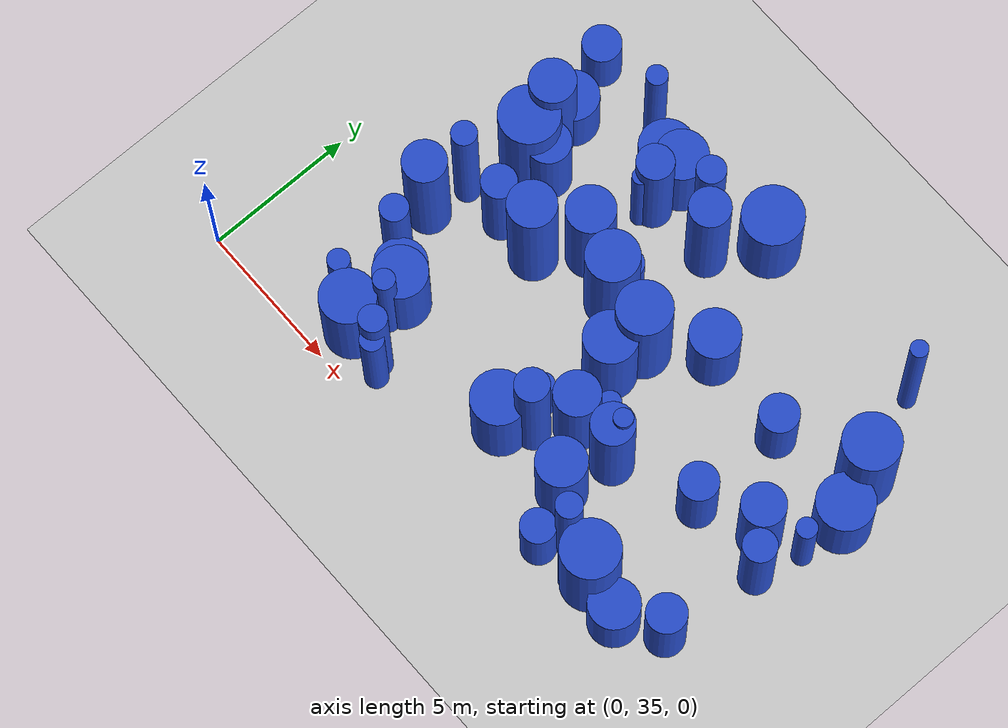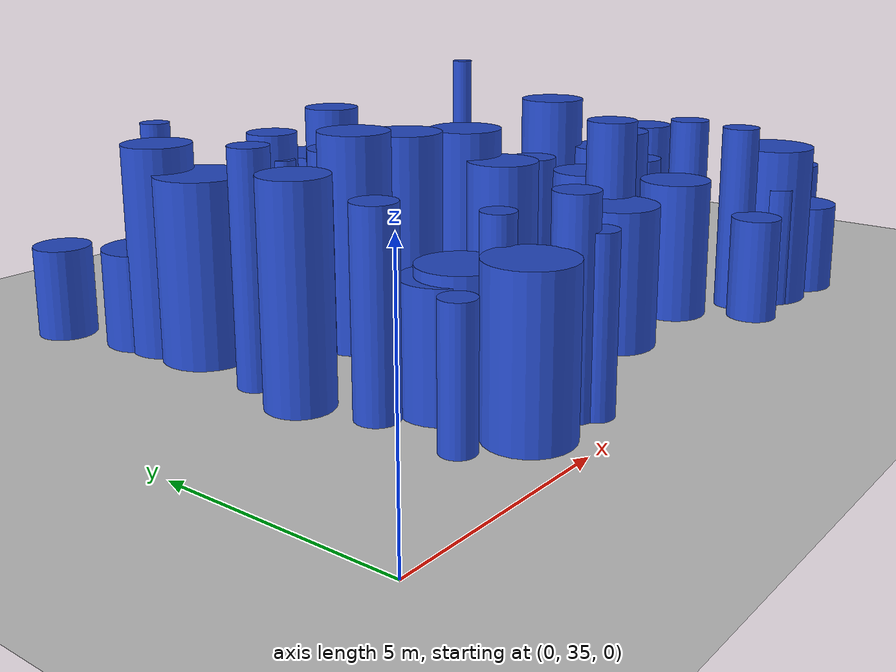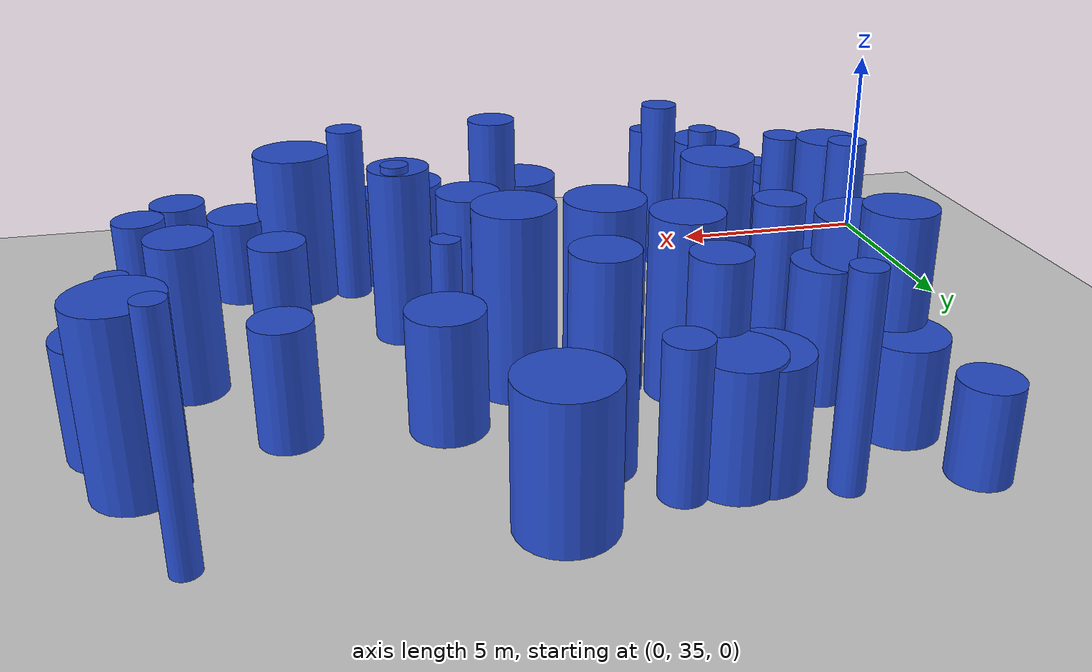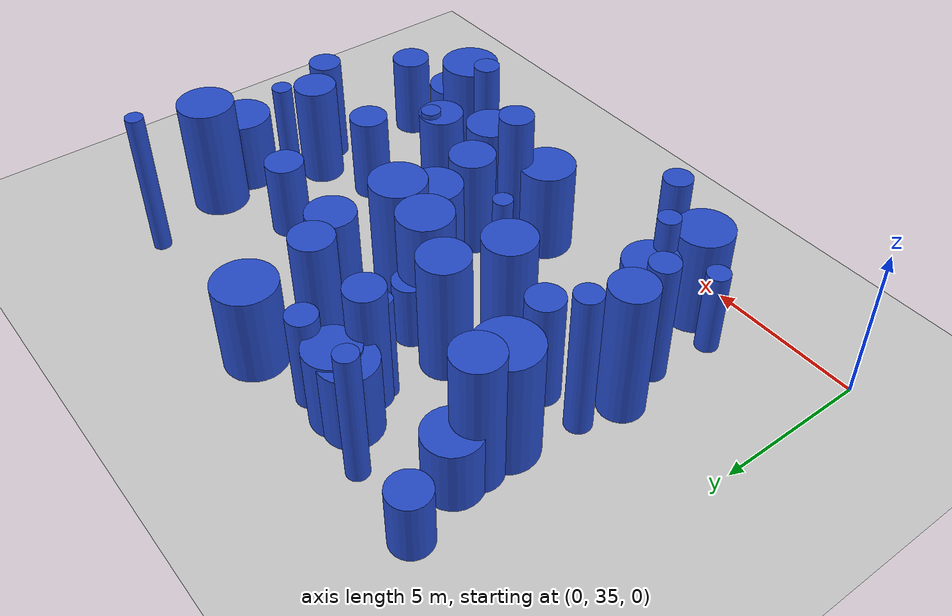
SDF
<sdf version="1.6">
 <world name="default">
  <model name="ground_plane">
   <static>1</static>
   <link name="link">
    <collision name="collision">
     <geometry><plane><normal>0 0 1</normal><size>100 100</size></plane></geometry>
     <surface><friction><ode><mu>100</mu><mu2>50</mu2></ode></friction></surface>
    </collision>
    <visual name="visual">
     <cast_shadows>0</cast_shadows>
     <geometry><plane><normal>0 0 1</normal><size>100 100</size></plane></geometry>
     <material>
      <script><uri>file://media/materials/scripts/gazebo.material</uri><name>Gazebo/Grey</name></script>
     </material>
    </visual>
   </link>
  </model>
  <model name="1">
   <static>0</static>
   <link name="link">
    <inertial>
     <mass>2</mass>
     <inertia>
      <ixx>0.889597</ixx>
      <ixy>0</ixy>
      <ixz>0</ixz>
      <iyy>0.889597</iyy>
      <iyz>0</iyz>
      <izz>0.404641</izz>
     </inertia>
    </inertial>
    <collision name="collision">
     <geometry><cylinder><length>2.03068</length><radius>0.636114</radius></cylinder></geometry>
     <surface><contact><collide_without_contact>1</collide_without_contact></contact></surface>
    </collision>
    <visual name="visual">
     <geometry><cylinder><length>2.03068</length><radius>0.636114</radius></cylinder></geometry>
     <material>
      <script><uri>file://media/materials/scripts/gazebo.material</uri><name>Gazebo/Blue</name></script>
     </material>
    </visual>
    <gravity>0</gravity>
   </link>
   <pose>3.46889 47.8136 1.01534 0 -0 0</pose>
  </model>
  <model name="3">
   <static>0</static>
   <link name="link">
    <inertial>
     <mass>2</mass>
     <inertia><ixx>3.44328</ixx><ixy>0</ixy><ixz>0</ixz><iyy>3.44328</iyy><iyz>0</iyz><izz>0.742387</izz></inertia>
    </inertial>
    <collision name="collision">
     <geometry><cylinder><length>4.29331</length><radius>0.861619</radius></cylinder></geometry>
     <surface><contact><collide_without_contact>1</collide_without_contact></contact></surface>
    </collision>
    <visual name="visual">
     <geometry><cylinder><length>4.29331</length><radius>0.861619</radius></cylinder></geometry>
     <material>
      <script><uri>file://media/materials/scripts/gazebo.material</uri><name>Gazebo/Blue</name></script>
     </material>
    </visual>
    <gravity>0</gravity>
   </link>
   <pose>9.53934 42.8927 2.14666 0 -0 0</pose>
  </model>
  <model name="4">
   <static>0</static>
   <link name="link">
    <inertial>
     <mass>2</mass>
     <inertia><ixx>1.52078</ixx><ixy>0</ixy><ixz>0</ixz><iyy>1.52078</iyy><iyz>0</iyz><izz>0.706881</izz></inertia>
    </inertial>
    <collision name="collision">
     <geometry><cylinder><length>2.64651</length><radius>0.840762</radius></cylinder></geometry>
     <surface><contact><collide_without_contact>1</collide_without_contact></contact></surface>
    </collision>
    <visual name="visual">
     <geometry><cylinder><length>2.64651</length><radius>0.840762</radius></cylinder></geometry>
     <material>
      <script><uri>file://media/materials/scripts/gazebo.material</uri><name>Gazebo/Blue</name></script>
     </material>
    </visual>
    <gravity>0</gravity>
   </link>
   <pose>5.06571 38.2801 1.32326 0 -0 0</pose>
  </model>
  <model name="21">
   <static>0</static>
   <link name="link">
    <inertial>
     <mass>2</mass>
     <inertia><ixx>3.67494</ixx><ixy>0</ixy><ixz>0</ixz><iyy>3.67494</iyy><iyz>0</iyz><izz>0.558673</izz></inertia>
    </inertial>
    <collision name="collision">
     <geometry><cylinder><length>4.51371</length><radius>0.747444</radius></cylinder></geometry>
     <surface><contact><collide_without_contact>1</collide_without_contact></contact></surface>
    </collision>
    <visual name="visual">
     <geometry><cylinder><length>4.51371</length><radius>0.747444</radius></cylinder></geometry>
     <material>
      <script><uri>file://media/materials/scripts/gazebo.material</uri><name>Gazebo/Blue</name></script>
     </material>
    </visual>
    <gravity>0</gravity>
   </link>
   <pose>4.16992 45.1792 2.25686 0 -0 0</pose>
  </model>
  <model name="39">
   <static>0</static>
   <link name="link">
    <inertial>
     <mass>2</mass>
     <inertia><ixx>1.53544</ixx><ixy>0</ixy><ixz>0</ixz><iyy>1.53544</iyy><iyz>0</iyz><izz>0.411838</izz></inertia>
    </inertial>
    <collision name="collision">
     <geometry><cylinder><length>2.82438</length><radius>0.641746</radius></cylinder></geometry>
     <surface><contact><collide_without_contact>1</collide_without_contact></contact></surface>
    </collision>
    <visual name="visual">
     <geometry><cylinder><length>2.82438</length><radius>0.641746</radius></cylinder></geometry>
     <material>
      <script><uri>file://media/materials/scripts/gazebo.material</uri><name>Gazebo/Blue</name></script>
     </material>
    </visual>
    <gravity>0</gravity>
   </link>
   <pose>18.6007 37.0653 1.41219 0 -0 0</pose>
  </model>
  <model name="60">
   <static>0</static>
   <link name="link">
    <inertial>
     <mass>2</mass>
     <inertia><ixx>2.27596</ixx><ixy>0</ixy><ixz>0</ixz><iyy>2.27596</iyy><iyz>0</iyz><izz>0.815841</izz></inertia>
    </inertial>
    <collision name="collision">
     <geometry><cylinder><length>3.34787</length><radius>0.903239</radius></cylinder></geometry>
     <surface><contact><collide_without_contact>1</collide_without_contact></contact></surface>
    </collision>
    <visual name="visual">
     <geometry><cylinder><length>3.34787</length><radius>0.903239</radius></cylinder></geometry>
     <material>
      <script><uri>file://media/materials/scripts/gazebo.material</uri><name>Gazebo/Blue</name></script>
     </material>
    </visual>
    <gravity>0</gravity>
   </link>
   <pose>5.01444 36.257 1.67394 0 -0 0</pose>
  </model>
  <model name="65">
   <static>0</static>
   <link name="link">
    <inertial>
     <mass>2</mass>
     <inertia><ixx>1.18561</ixx><ixy>0</ixy><ixz>0</ixz><iyy>1.18561</iyy><iyz>0</iyz><izz>0.125849</izz></inertia>
    </inertial>
    <collision name="collision">
     <geometry><cylinder><length>2.59541</length><radius>0.354752</radius></cylinder></geometry>
     <surface><contact><collide_without_contact>1</collide_without_contact></contact></surface>
    </collision>
    <visual name="visual">
     <geometry><cylinder><length>2.59541</length><radius>0.354752</radius></cylinder></geometry>
     <material>
      <script><uri>file://media/materials/scripts/gazebo.material</uri><name>Gazebo/Blue</name></script>
     </material>
    </visual>
    <gravity>0</gravity>
   </link>
   <pose>12.5356 40.1762 1.2977 0 -0 0</pose>
  </model>
  <model name="75">
   <static>0</static>
   <link name="link">
    <inertial>
     <mass>2</mass>
     <inertia><ixx>4.06872</ixx><ixy>0</ixy><ixz>0</ixz><iyy>4.06872</iyy><iyz>0</iyz><izz>0.624132</izz></inertia>
    </inertial>
    <collision name="collision">
     <geometry><cylinder><length>4.74762</length><radius>0.790021</radius></cylinder></geometry>
     <surface><contact><collide_without_contact>1</collide_without_contact></contact></surface>
    </collision>
    <visual name="visual">
     <geometry><cylinder><length>4.74762</length><radius>0.790021</radius></cylinder></geometry>
     <material>
      <script><uri>file://media/materials/scripts/gazebo.material</uri><name>Gazebo/Blue</name></script>
     </material>
    </visual>
    <gravity>0</gravity>
   </link>
   <pose>6.83529 42.0397 2.37381 0 -0 0</pose>
  </model>
  <model name="89">
   <static>0</static>
   <link name="link">
    <inertial>
     <mass>2</mass>
     <inertia><ixx>1.13794</ixx><ixy>0</ixy><ixz>0</ixz><iyy>1.13794</iyy><iyz>0</iyz><izz>0.753401</izz></inertia>
    </inertial>
    <collision name="collision">
     <geometry><cylinder><length>2.13716</length><radius>0.867987</radius></cylinder></geometry>
     <surface><contact><collide_without_contact>1</collide_without_contact></contact></surface>
    </collision>
    <visual name="visual">
     <geometry><cylinder><length>2.13716</length><radius>0.867987</radius></cylinder></geometry>
     <material>
      <script><uri>file://media/materials/scripts/gazebo.material</uri><name>Gazebo/Blue</name></script>
     </material>
    </visual>
    <gravity>0</gravity>
   </link>
   <pose>4.20419 45.9485 1.06858 0 -0 0</pose>
  </model>
  <model name="91">
   <static>0</static>
   <link name="link">
    <inertial>
     <mass>2</mass>
     <inertia><ixx>1.98681</ixx><ixy>0</ixy><ixz>0</ixz><iyy>1.98681</iyy><iyz>0</iyz><izz>0.983829</izz></inertia>
    </inertial>
    <collision name="collision">
     <geometry><cylinder><length>2.99489</length><radius>0.991881</radius></cylinder></geometry>
     <surface><contact><collide_without_contact>1</collide_without_contact></contact></surface>
    </collision>
    <visual name="visual">
     <geometry><cylinder><length>2.99489</length><radius>0.991881</radius></cylinder></geometry>
     <material>
      <script><uri>file://media/materials/scripts/gazebo.material</uri><name>Gazebo/Blue</name></script>
     </material>
    </visual>
    <gravity>0</gravity>
   </link>
   <pose>11.4309 47.7421 1.49744 0 -0 0</pose>
  </model>
  <model name="107">
   <static>0</static>
   <link name="link">
    <inertial>
     <mass>2</mass>
     <inertia><ixx>2.44999</ixx><ixy>0</ixy><ixz>0</ixz><iyy>2.44999</iyy><iyz>0</iyz><izz>0.747513</izz></inertia>
    </inertial>
    <collision name="collision">
     <geometry><cylinder><length>3.5295</length><radius>0.864588</radius></cylinder></geometry>
     <surface><contact><collide_without_contact>1</collide_without_contact></contact></surface>
    </collision>
    <visual name="visual">
     <geometry><cylinder><length>3.5295</length><radius>0.864588</radius></cylinder></geometry>
     <material>
      <script><uri>file://media/materials/scripts/gazebo.material</uri><name>Gazebo/Blue</name></script>
     </material>
    </visual>
    <gravity>0</gravity>
   </link>
   <pose>11.2421 41.3264 1.76475 0 -0 0</pose>
  </model>
  <model name="108">
   <static>0</static>
   <link name="link">
    <inertial>
     <mass>2</mass>
     <inertia>
      <ixx>0.946671</ixx>
      <ixy>0</ixy>
      <ixz>0</ixz>
      <iyy>0.946671</iyy>
      <iyz>0</iyz>
      <izz>0.17945</izz>
     </inertia>
    </inertial>
    <collision name="collision">
     <geometry><cylinder><length>2.26753</length><radius>0.423616</radius></cylinder></geometry>
     <surface><contact><collide_without_contact>1</collide_without_contact></contact></surface>
    </collision>
    <visual name="visual">
     <geometry><cylinder><length>2.26753</length><radius>0.423616</radius></cylinder></geometry>
     <material>
      <script><uri>file://media/materials/scripts/gazebo.material</uri><name>Gazebo/Blue</name></script>
     </material>
    </visual>
    <gravity>0</gravity>
   </link>
   <pose>13.3868 39.3535 1.13376 0 -0 0</pose>
  </model>
  <model name="121">
   <static>0</static>
   <link name="link">
    <inertial>
     <mass>2</mass>
     <inertia>
      <ixx>0.938584</ixx>
      <ixy>0</ixy>
      <ixz>0</ixz>
      <iyy>0.938584</iyy>
      <iyz>0</iyz>
      <izz>0.296077</izz>
     </inertia>
    </inertial>
    <collision name="collision">
     <geometry><cylinder><length>2.17791</length><radius>0.544129</radius></cylinder></geometry>
     <surface><contact><collide_without_contact>1</collide_without_contact></contact></surface>
    </collision>
    <visual name="visual">
     <geometry><cylinder><length>2.17791</length><radius>0.544129</radius></cylinder></geometry>
     <material>
      <script><uri>file://media/materials/scripts/gazebo.material</uri><name>Gazebo/Blue</name></script>
     </material>
    </visual>
    <gravity>0</gravity>
   </link>
   <pose>9.45897 43.5755 1.08895 0 -0 0</pose>
  </model>
  <model name="122">
   <static>0</static>
   <link name="link">
    <inertial>
     <mass>2</mass>
     <inertia><ixx>2.03989</ixx><ixy>0</ixy><ixz>0</ixz><iyy>2.03989</iyy><iyz>0</iyz><izz>0.80967</izz></inertia>
    </inertial>
    <collision name="collision">
     <geometry><cylinder><length>3.13214</length><radius>0.899817</radius></cylinder></geometry>
     <surface><contact><collide_without_contact>1</collide_without_contact></contact></surface>
    </collision>
    <visual name="visual">
     <geometry><cylinder><length>3.13214</length><radius>0.899817</radius></cylinder></geometry>
     <material>
      <script><uri>file://media/materials/scripts/gazebo.material</uri><name>Gazebo/Blue</name></script>
     </material>
    </visual>
    <gravity>0</gravity>
   </link>
   <pose>10.3738 37.6424 1.56607 0 -0 0</pose>
  </model>
  <model name="141">
   <static>0</static>
   <link name="link">
    <inertial>
     <mass>2</mass>
     <inertia><ixx>2.22837</ixx><ixy>0</ixy><ixz>0</ixz><iyy>2.22837</iyy><iyz>0</iyz><izz>0.55836</izz></inertia>
    </inertial>
    <collision name="collision">
     <geometry><cylinder><length>3.41982</length><radius>0.747235</radius></cylinder></geometry>
     <surface><contact><collide_without_contact>1</collide_without_contact></contact></surface>
    </collision>
    <visual name="visual">
     <geometry><cylinder><length>3.41982</length><radius>0.747235</radius></cylinder></geometry>
     <material>
      <script><uri>file://media/materials/scripts/gazebo.material</uri><name>Gazebo/Blue</name></script>
     </material>
    </visual>
    <gravity>0</gravity>
   </link>
   <pose>11.8938 39.4243 1.70991 0 -0 0</pose>
  </model>
  <model name="144">
   <static>0</static>
   <link name="link">
    <inertial>
     <mass>2</mass>
     <inertia><ixx>3.2992</ixx><ixy>0</ixy><ixz>0</ixz><iyy>3.2992</iyy><iyz>0</iyz><izz>0.796339</izz></inertia>
    </inertial>
    <collision name="collision">
     <geometry><cylinder><length>4.17207</length><radius>0.892378</radius></cylinder></geometry>
     <surface><contact><collide_without_contact>1</collide_without_contact></contact></surface>
    </collision>
    <visual name="visual">
     <geometry><cylinder><length>4.17207</length><radius>0.892378</radius></cylinder></geometry>
     <material>
      <script><uri>file://media/materials/scripts/gazebo.material</uri><name>Gazebo/Blue</name></script>
     </material>
    </visual>
    <gravity>0</gravity>
   </link>
   <pose>11.3766 42.5503 2.08603 0 -0 0</pose>
  </model>
  <model name="149">
   <static>0</static>
   <link name="link">
    <inertial>
     <mass>2</mass>
     <inertia>
      <ixx>2.16285</ixx>
      <ixy>0</ixy>
      <ixz>0</ixz>
      <iyy>2.16285</iyy>
      <iyz>0</iyz>
      <izz>0.0800078</izz>
     </inertia>
    </inertial>
    <collision name="collision">
     <geometry><cylinder><length>3.5689</length><radius>0.282857</radius></cylinder></geometry>
     <surface><contact><collide_without_contact>1</collide_without_contact></contact></surface>
    </collision>
    <visual name="visual">
     <geometry><cylinder><length>3.5689</length><radius>0.282857</radius></cylinder></geometry>
     <material>
      <script><uri>file://media/materials/scripts/gazebo.material</uri><name>Gazebo/Blue</name></script>
     </material>
    </visual>
    <gravity>0</gravity>
   </link>
   <pose>7.99764 45.3995 1.78445 0 -0 0</pose>
  </model>
  <model name="151">
   <static>0</static>
   <link name="link">
    <inertial>
     <mass>2</mass>
     <inertia><ixx>1.79952</ixx><ixy>0</ixy><ixz>0</ixz><iyy>1.79952</iyy><iyz>0</iyz><izz>0.532405</izz></inertia>
    </inertial>
    <collision name="collision">
     <geometry><cylinder><length>3.03314</length><radius>0.729661</radius></cylinder></geometry>
     <surface><contact><collide_without_contact>1</collide_without_contact></contact></surface>
    </collision>
    <visual name="visual">
     <geometry><cylinder><length>3.03314</length><radius>0.729661</radius></cylinder></geometry>
     <material>
      <script><uri>file://media/materials/scripts/gazebo.material</uri><name>Gazebo/Blue</name></script>
     </material>
    </visual>
    <gravity>0</gravity>
   </link>
   <pose>5.14651 44.1604 1.51657 0 -0 0</pose>
  </model>
  <model name="160">
   <static>0</static>
   <link name="link">
    <inertial>
     <mass>2</mass>
     <inertia><ixx>1.587</ixx><ixy>0</ixy><ixz>0</ixz><iyy>1.587</iyy><iyz>0</iyz><izz>0.717672</izz></inertia>
    </inertial>
    <collision name="collision">
     <geometry><cylinder><length>2.71459</length><radius>0.847155</radius></cylinder></geometry>
     <surface><contact><collide_without_contact>1</collide_without_contact></contact></surface>
    </collision>
    <visual name="visual">
     <geometry><cylinder><length>2.71459</length><radius>0.847155</radius></cylinder></geometry>
     <material>
      <script><uri>file://media/materials/scripts/gazebo.material</uri><name>Gazebo/Blue</name></script>
     </material>
    </visual>
    <gravity>0</gravity>
   </link>
   <pose>8.05956 47.0475 1.35729 0 -0 0</pose>
  </model>
  <model name="172">
   <static>0</static>
   <link name="link">
    <inertial>
     <mass>2</mass>
     <inertia><ixx>2.4119</ixx><ixy>0</ixy><ixz>0</ixz><iyy>2.4119</iyy><iyz>0</iyz><izz>0.334756</izz></inertia>
    </inertial>
    <collision name="collision">
     <geometry><cylinder><length>3.66976</length><radius>0.578581</radius></cylinder></geometry>
     <surface><contact><collide_without_contact>1</collide_without_contact></contact></surface>
    </collision>
    <visual name="visual">
     <geometry><cylinder><length>3.66976</length><radius>0.578581</radius></cylinder></geometry>
     <material>
      <script><uri>file://media/materials/scripts/gazebo.material</uri><name>Gazebo/Blue</name></script>
     </material>
    </visual>
    <gravity>0</gravity>
   </link>
   <pose>5.31905 42.0284 1.83488 0 -0 0</pose>
  </model>
  <model name="183">
   <static>0</static>
   <link name="link">
    <inertial>
     <mass>2</mass>
     <inertia><ixx>1.0876</ixx><ixy>0</ixy><ixz>0</ixz><iyy>1.0876</iyy><iyz>0</iyz><izz>0.670866</izz></inertia>
    </inertial>
    <collision name="collision">
     <geometry><cylinder><length>2.12439</length><radius>0.819064</radius></cylinder></geometry>
     <surface><contact><collide_without_contact>1</collide_without_contact></contact></surface>
    </collision>
    <visual name="visual">
     <geometry><cylinder><length>2.12439</length><radius>0.819064</radius></cylinder></geometry>
     <material>
      <script><uri>file://media/materials/scripts/gazebo.material</uri><name>Gazebo/Blue</name></script>
     </material>
    </visual>
    <gravity>0</gravity>
   </link>
   <pose>17.2233 36.2243 1.06219 0 -0 0</pose>
  </model>
  <model name="189">
   <static>0</static>
   <link name="link">
    <inertial>
     <mass>2</mass>
     <inertia><ixx>2.23636</ixx><ixy>0</ixy><ixz>0</ixz><iyy>2.23636</iyy><iyz>0</iyz><izz>0.148612</izz></inertia>
    </inertial>
    <collision name="collision">
     <geometry><cylinder><length>3.60171</length><radius>0.385503</radius></cylinder></geometry>
     <surface><contact><collide_without_contact>1</collide_without_contact></contact></surface>
    </collision>
    <visual name="visual">
     <geometry><cylinder><length>3.60171</length><radius>0.385503</radius></cylinder></geometry>
     <material>
      <script><uri>file://media/materials/scripts/gazebo.material</uri><name>Gazebo/Blue</name></script>
     </material>
    </visual>
    <gravity>0</gravity>
   </link>
   <pose>6.62027 35.8617 1.80086 0 -0 0</pose>
  </model>
  <model name="194">
   <static>0</static>
   <link name="link">
    <inertial>
     <mass>2</mass>
     <inertia><ixx>1.39867</ixx><ixy>0</ixy><ixz>0</ixz><iyy>1.39867</iyy><iyz>0</iyz><izz>0.134449</izz></inertia>
    </inertial>
    <collision name="collision">
     <geometry><cylinder><length>2.82643</length><radius>0.366673</radius></cylinder></geometry>
     <surface><contact><collide_without_contact>1</collide_without_contact></contact></surface>
    </collision>
    <visual name="visual">
     <geometry><cylinder><length>2.82643</length><radius>0.366673</radius></cylinder></geometry>
     <material>
      <script><uri>file://media/materials/scripts/gazebo.material</uri><name>Gazebo/Blue</name></script>
     </material>
    </visual>
    <gravity>0</gravity>
   </link>
   <pose>3.78266 36.9027 1.41321 0 -0 0</pose>
  </model>
  <model name="197">
   <static>0</static>
   <link name="link">
    <inertial>
     <mass>2</mass>
     <inertia><ixx>2.98537</ixx><ixy>0</ixy><ixz>0</ixz><iyy>2.98537</iyy><iyz>0</iyz><izz>0.214834</izz></inertia>
    </inertial>
    <collision name="collision">
     <geometry><cylinder><length>4.15544</length><radius>0.463502</radius></cylinder></geometry>
     <surface><contact><collide_without_contact>1</collide_without_contact></contact></surface>
    </collision>
    <visual name="visual">
     <geometry><cylinder><length>4.15544</length><radius>0.463502</radius></cylinder></geometry>
     <material>
      <script><uri>file://media/materials/scripts/gazebo.material</uri><name>Gazebo/Blue</name></script>
     </material>
    </visual>
    <gravity>0</gravity>
   </link>
   <pose>4.02497 38.9768 2.07772 0 -0 0</pose>
  </model>
  <model name="205">
   <static>0</static>
   <link name="link">
    <inertial>
     <mass>2</mass>
     <inertia><ixx>3.60074</ixx><ixy>0</ixy><ixz>0</ixz><iyy>3.60074</iyy><iyz>0</iyz><izz>0.447805</izz></inertia>
    </inertial>
    <collision name="collision">
     <geometry><cylinder><length>4.50123</length><radius>0.669183</radius></cylinder></geometry>
     <surface><contact><collide_without_contact>1</collide_without_contact></contact></surface>
    </collision>
    <visual name="visual">
     <geometry><cylinder><length>4.50123</length><radius>0.669183</radius></cylinder></geometry>
     <material>
      <script><uri>file://media/materials/scripts/gazebo.material</uri><name>Gazebo/Blue</name></script>
     </material>
    </visual>
    <gravity>0</gravity>
   </link>
   <pose>10.3577 46.0634 2.25061 0 -0 0</pose>
  </model>
  <model name="211">
   <static>0</static>
   <link name="link">
    <inertial>
     <mass>2</mass>
     <inertia><ixx>3.65419</ixx><ixy>0</ixy><ixz>0</ixz><iyy>3.65419</iyy><iyz>0</iyz><izz>0.50434</izz></inertia>
    </inertial>
    <collision name="collision">
     <geometry><cylinder><length>4.51798</length><radius>0.710169</radius></cylinder></geometry>
     <surface><contact><collide_without_contact>1</collide_without_contact></contact></surface>
    </collision>
    <visual name="visual">
     <geometry><cylinder><length>4.51798</length><radius>0.710169</radius></cylinder></geometry>
     <material>
      <script><uri>file://media/materials/scripts/gazebo.material</uri><name>Gazebo/Blue</name></script>
     </material>
    </visual>
    <gravity>0</gravity>
   </link>
   <pose>3.59734 40.5532 2.25899 0 -0 0</pose>
  </model>
  <model name="218">
   <static>0</static>
   <link name="link">
    <inertial>
     <mass>2</mass>
     <inertia><ixx>2.04719</ixx><ixy>0</ixy><ixz>0</ixz><iyy>2.04719</iyy><iyz>0</iyz><izz>0.663732</izz></inertia>
    </inertial>
    <collision name="collision">
     <geometry><cylinder><length>3.20811</length><radius>0.814697</radius></cylinder></geometry>
     <surface><contact><collide_without_contact>1</collide_without_contact></contact></surface>
    </collision>
    <visual name="visual">
     <geometry><cylinder><length>3.20811</length><radius>0.814697</radius></cylinder></geometry>
     <material>
      <script><uri>file://media/materials/scripts/gazebo.material</uri><name>Gazebo/Blue</name></script>
     </material>
    </visual>
    <gravity>0</gravity>
   </link>
   <pose>13.1333 37.7189 1.60405 0 -0 0</pose>
  </model>
  <model name="227">
   <static>0</static>
   <link name="link">
    <inertial>
     <mass>2</mass>
     <inertia><ixx>1.48646</ixx><ixy>0</ixy><ixz>0</ixz><iyy>1.48646</iyy><iyz>0</iyz><izz>0.860408</izz></inertia>
    </inertial>
    <collision name="collision">
     <geometry><cylinder><length>2.51744</length><radius>0.927582</radius></cylinder></geometry>
     <surface><contact><collide_without_contact>1</collide_without_contact></contact></surface>
    </collision>
    <visual name="visual">
     <geometry><cylinder><length>2.51744</length><radius>0.927582</radius></cylinder></geometry>
     <material>
      <script><uri>file://media/materials/scripts/gazebo.material</uri><name>Gazebo/Blue</name></script>
     </material>
    </visual>
    <gravity>0</gravity>
   </link>
   <pose>19.4925 43.426 1.25872 0 -0 0</pose>
  </model>
  <model name="228">
   <static>0</static>
   <link name="link">
    <inertial>
     <mass>2</mass>
     <inertia><ixx>1.11134</ixx><ixy>0</ixy><ixz>0</ixz><iyy>1.11134</iyy><iyz>0</iyz><izz>0.324381</izz></inertia>
    </inertial>
    <collision name="collision">
     <geometry><cylinder><length>2.3864</length><radius>0.569545</radius></cylinder></geometry>
     <surface><contact><collide_without_contact>1</collide_without_contact></contact></surface>
    </collision>
    <visual name="visual">
     <geometry><cylinder><length>2.3864</length><radius>0.569545</radius></cylinder></geometry>
     <material>
      <script><uri>file://media/materials/scripts/gazebo.material</uri><name>Gazebo/Blue</name></script>
     </material>
    </visual>
    <gravity>0</gravity>
   </link>
   <pose>13.9903 36.0469 1.1932 0 -0 0</pose>
  </model>
  <model name="246">
   <static>0</static>
   <link name="link">
    <inertial>
     <mass>2</mass>
     <inertia><ixx>3.11288</ixx><ixy>0</ixy><ixz>0</ixz><iyy>3.11288</iyy><iyz>0</iyz><izz>0.972323</izz></inertia>
    </inertial>
    <collision name="collision">
     <geometry><cylinder><length>3.96993</length><radius>0.986064</radius></cylinder></geometry>
     <surface><contact><collide_without_contact>1</collide_without_contact></contact></surface>
    </collision>
    <visual name="visual">
     <geometry><cylinder><length>3.96993</length><radius>0.986064</radius></cylinder></geometry>
     <material>
      <script><uri>file://media/materials/scripts/gazebo.material</uri><name>Gazebo/Blue</name></script>
     </material>
    </visual>
    <gravity>0</gravity>
   </link>
   <pose>4.37035 44.0672 1.98496 0 -0 0</pose>
  </model>
  <model name="254">
   <static>0</static>
   <link name="link">
    <inertial>
     <mass>2</mass>
     <inertia>
      <ixx>4.14461</ixx>
      <ixy>0</ixy>
      <ixz>0</ixz>
      <iyy>4.14461</iyy>
      <iyz>0</iyz>
      <izz>0.0826098</izz>
     </inertia>
    </inertial>
    <collision name="collision">
     <geometry><cylinder><length>4.96184</length><radius>0.287419</radius></cylinder></geometry>
     <surface><contact><collide_without_contact>1</collide_without_contact></contact></surface>
    </collision>
    <visual name="visual">
     <geometry><cylinder><length>4.96184</length><radius>0.287419</radius></cylinder></geometry>
     <material>
      <script><uri>file://media/materials/scripts/gazebo.material</uri><name>Gazebo/Blue</name></script>
     </material>
    </visual>
    <gravity>0</gravity>
   </link>
   <pose>17.8684 47.6294 2.48092 0 -0 0</pose>
  </model>
  <model name="268">
   <static>0</static>
   <link name="link">
    <inertial>
     <mass>2</mass>
     <inertia><ixx>1.54803</ixx><ixy>0</ixy><ixz>0</ixz><iyy>1.54803</iyy><iyz>0</iyz><izz>0.797391</izz></inertia>
    </inertial>
    <collision name="collision">
     <geometry><cylinder><length>2.62602</length><radius>0.892967</radius></cylinder></geometry>
     <surface><contact><collide_without_contact>1</collide_without_contact></contact></surface>
    </collision>
    <visual name="visual">
     <geometry><cylinder><length>2.62602</length><radius>0.892967</radius></cylinder></geometry>
     <material>
      <script><uri>file://media/materials/scripts/gazebo.material</uri><name>Gazebo/Blue</name></script>
     </material>
    </visual>
    <gravity>0</gravity>
   </link>
   <pose>7.50631 46.9144 1.31301 0 -0 0</pose>
  </model>
  <model name="273">
   <static>0</static>
   <link name="link">
    <inertial>
     <mass>2</mass>
     <inertia><ixx>2.35766</ixx><ixy>0</ixy><ixz>0</ixz><iyy>2.35766</iyy><iyz>0</iyz><izz>0.291752</izz></inertia>
    </inertial>
    <collision name="collision">
     <geometry><cylinder><length>3.6429</length><radius>0.540141</radius></cylinder></geometry>
     <surface><contact><collide_without_contact>1</collide_without_contact></contact></surface>
    </collision>
    <visual name="visual">
     <geometry><cylinder><length>3.6429</length><radius>0.540141</radius></cylinder></geometry>
     <material>
      <script><uri>file://media/materials/scripts/gazebo.material</uri><name>Gazebo/Blue</name></script>
     </material>
    </visual>
    <gravity>0</gravity>
   </link>
   <pose>19.0183 40.3438 1.82145 0 -0 0</pose>
  </model>
  <model name="274">
   <static>0</static>
   <link name="link">
    <inertial>
     <mass>2</mass>
     <inertia><ixx>1.82164</ixx><ixy>0</ixy><ixz>0</ixz><iyy>1.82164</iyy><iyz>0</iyz><izz>0.228422</izz></inertia>
    </inertial>
    <collision name="collision">
     <geometry><cylinder><length>3.20072</length><radius>0.477935</radius></cylinder></geometry>
     <surface><contact><collide_without_contact>1</collide_without_contact></contact></surface>
    </collision>
    <visual name="visual">
     <geometry><cylinder><length>3.20072</length><radius>0.477935</radius></cylinder></geometry>
     <material>
      <script><uri>file://media/materials/scripts/gazebo.material</uri><name>Gazebo/Blue</name></script>
     </material>
    </visual>
    <gravity>0</gravity>
   </link>
   <pose>9.14168 47.2596 1.60036 0 -0 0</pose>
  </model>
  <model name="278">
   <static>0</static>
   <link name="link">
    <inertial>
     <mass>2</mass>
     <inertia><ixx>1.50173</ixx><ixy>0</ixy><ixz>0</ixz><iyy>1.50173</iyy><iyz>0</iyz><izz>0.670975</izz></inertia>
    </inertial>
    <collision name="collision">
     <geometry><cylinder><length>2.64527</length><radius>0.819131</radius></cylinder></geometry>
     <surface><contact><collide_without_contact>1</collide_without_contact></contact></surface>
    </collision>
    <visual name="visual">
     <geometry><cylinder><length>2.64527</length><radius>0.819131</radius></cylinder></geometry>
     <material>
      <script><uri>file://media/materials/scripts/gazebo.material</uri><name>Gazebo/Blue</name></script>
     </material>
    </visual>
    <gravity>0</gravity>
   </link>
   <pose>13.0116 43.9822 1.32264 0 -0 0</pose>
  </model>
  <model name="289">
   <static>0</static>
   <link name="link">
    <inertial>
     <mass>2</mass>
     <inertia><ixx>2.80125</ixx><ixy>0</ixy><ixz>0</ixz><iyy>2.80125</iyy><iyz>0</iyz><izz>0.900501</izz></inertia>
    </inertial>
    <collision name="collision">
     <geometry><cylinder><length>3.7558</length><radius>0.948948</radius></cylinder></geometry>
     <surface><contact><collide_without_contact>1</collide_without_contact></contact></surface>
    </collision>
    <visual name="visual">
     <geometry><cylinder><length>3.7558</length><radius>0.948948</radius></cylinder></geometry>
     <material>
      <script><uri>file://media/materials/scripts/gazebo.material</uri><name>Gazebo/Blue</name></script>
     </material>
    </visual>
    <gravity>0</gravity>
   </link>
   <pose>15.8348 36.4968 1.8779 0 -0 0</pose>
  </model>
  <model name="295">
   <static>0</static>
   <link name="link">
    <inertial>
     <mass>2</mass>
     <inertia><ixx>1.46747</ixx><ixy>0</ixy><ixz>0</ixz><iyy>1.46747</iyy><iyz>0</iyz><izz>0.0903</izz></inertia>
    </inertial>
    <collision name="collision">
     <geometry><cylinder><length>2.92128</length><radius>0.3005</radius></cylinder></geometry>
     <surface><contact><collide_without_contact>1</collide_without_contact></contact></surface>
    </collision>
    <visual name="visual">
     <geometry><cylinder><length>2.92128</length><radius>0.3005</radius></cylinder></geometry>
     <material>
      <script><uri>file://media/materials/scripts/gazebo.material</uri><name>Gazebo/Blue</name></script>
     </material>
    </visual>
    <gravity>0</gravity>
   </link>
   <pose>16.1941 40.2323 1.46064 0 -0 0</pose>
  </model>
  <model name="299">
   <static>0</static>
   <link name="link">
    <inertial>
     <mass>2</mass>
     <inertia><ixx>2.33839</ixx><ixy>0</ixy><ixz>0</ixz><iyy>2.33839</iyy><iyz>0</iyz><izz>0.499215</izz></inertia>
    </inertial>
    <collision name="collision">
     <geometry><cylinder><length>3.54015</length><radius>0.706552</radius></cylinder></geometry>
     <surface><contact><collide_without_contact>1</collide_without_contact></contact></surface>
    </collision>
    <visual name="visual">
     <geometry><cylinder><length>3.54015</length><radius>0.706552</radius></cylinder></geometry>
     <material>
      <script><uri>file://media/materials/scripts/gazebo.material</uri><name>Gazebo/Blue</name></script>
     </material>
    </visual>
    <gravity>0</gravity>
   </link>
   <pose>18.1396 41.292 1.77008 0 -0 0</pose>
  </model>
  <model name="329">
   <static>0</static>
   <link name="link">
    <inertial>
     <mass>2</mass>
     <inertia><ixx>3.98443</ixx><ixy>0</ixy><ixz>0</ixz><iyy>3.98443</iyy><iyz>0</iyz><izz>0.304236</izz></inertia>
    </inertial>
    <collision name="collision">
     <geometry><cylinder><length>4.79519</length><radius>0.551576</radius></cylinder></geometry>
     <surface><contact><collide_without_contact>1</collide_without_contact></contact></surface>
    </collision>
    <visual name="visual">
     <geometry><cylinder><length>4.79519</length><radius>0.551576</radius></cylinder></geometry>
     <material>
      <script><uri>file://media/materials/scripts/gazebo.material</uri><name>Gazebo/Blue</name></script>
     </material>
    </visual>
    <gravity>0</gravity>
   </link>
   <pose>11.1447 38.3004 2.3976 0 -0 0</pose>
  </model>
  <model name="352">
   <static>0</static>
   <link name="link">
    <inertial>
     <mass>2</mass>
     <inertia><ixx>1.42025</ixx><ixy>0</ixy><ixz>0</ixz><iyy>1.42025</iyy><iyz>0</iyz><izz>0.10915</izz></inertia>
    </inertial>
    <collision name="collision">
     <geometry><cylinder><length>2.86252</length><radius>0.330379</radius></cylinder></geometry>
     <surface><contact><collide_without_contact>1</collide_without_contact></contact></surface>
    </collision>
    <visual name="visual">
     <geometry><cylinder><length>2.86252</length><radius>0.330379</radius></cylinder></geometry>
     <material>
      <script><uri>file://media/materials/scripts/gazebo.material</uri><name>Gazebo/Blue</name></script>
     </material>
    </visual>
    <gravity>0</gravity>
   </link>
   <pose>9.52722 43.1536 1.43126 0 -0 0</pose>
  </model>
  <model name="354">
   <static>0</static>
   <link name="link">
    <inertial>
     <mass>2</mass>
     <inertia><ixx>4.03304</ixx><ixy>0</ixy><ixz>0</ixz><iyy>4.03304</iyy><iyz>0</iyz><izz>0.172402</izz></inertia>
    </inertial>
    <collision name="collision">
     <geometry><cylinder><length>4.86632</length><radius>0.415213</radius></cylinder></geometry>
     <surface><contact><collide_without_contact>1</collide_without_contact></contact></surface>
    </collision>
    <visual name="visual">
     <geometry><cylinder><length>4.86632</length><radius>0.415213</radius></cylinder></geometry>
     <material>
      <script><uri>file://media/materials/scripts/gazebo.material</uri><name>Gazebo/Blue</name></script>
     </material>
    </visual>
    <gravity>0</gravity>
   </link>
   <pose>3.80668 41.9597 2.43316 0 -0 0</pose>
  </model>
  <model name="365">
   <static>0</static>
   <link name="link">
    <inertial>
     <mass>2</mass>
     <inertia>
      <ixx>3.14045</ixx>
      <ixy>0</ixy>
      <ixz>0</ixz>
      <iyy>3.14045</iyy>
      <iyz>0</iyz>
      <izz>0.0978445</izz>
     </inertia>
    </inertial>
    <collision name="collision">
     <geometry><cylinder><length>4.30687</length><radius>0.312801</radius></cylinder></geometry>
     <surface><contact><collide_without_contact>1</collide_without_contact></contact></surface>
    </collision>
    <visual name="visual">
     <geometry><cylinder><length>4.30687</length><radius>0.312801</radius></cylinder></geometry>
     <material>
      <script><uri>file://media/materials/scripts/gazebo.material</uri><name>Gazebo/Blue</name></script>
     </material>
    </visual>
    <gravity>0</gravity>
   </link>
   <pose>13.5694 39.7689 2.15344 0 -0 0</pose>
  </model>
  <model name="368">
   <static>0</static>
   <link name="link">
    <inertial>
     <mass>2</mass>
     <inertia><ixx>2.65153</ixx><ixy>0</ixy><ixz>0</ixz><iyy>2.65153</iyy><iyz>0</iyz><izz>0.12529</izz></inertia>
    </inertial>
    <collision name="collision">
     <geometry><cylinder><length>3.94123</length><radius>0.353963</radius></cylinder></geometry>
     <surface><contact><collide_without_contact>1</collide_without_contact></contact></surface>
    </collision>
    <visual name="visual">
     <geometry><cylinder><length>3.94123</length><radius>0.353963</radius></cylinder></geometry>
     <material>
      <script><uri>file://media/materials/scripts/gazebo.material</uri><name>Gazebo/Blue</name></script>
     </material>
    </visual>
    <gravity>0</gravity>
   </link>
   <pose>5.50144 37.3098 1.97062 0 -0 0</pose>
  </model>
  <model name="371">
   <static>0</static>
   <link name="link">
    <inertial>
     <mass>2</mass>
     <inertia><ixx>1.58212</ixx><ixy>0</ixy><ixz>0</ixz><iyy>1.58212</iyy><iyz>0</iyz><izz>0.114029</izz></inertia>
    </inertial>
    <collision name="collision">
     <geometry><cylinder><length>3.025</length><radius>0.337682</radius></cylinder></geometry>
     <surface><contact><collide_without_contact>1</collide_without_contact></contact></surface>
    </collision>
    <visual name="visual">
     <geometry><cylinder><length>3.025</length><radius>0.337682</radius></cylinder></geometry>
     <material>
      <script><uri>file://media/materials/scripts/gazebo.material</uri><name>Gazebo/Blue</name></script>
     </material>
    </visual>
    <gravity>0</gravity>
   </link>
   <pose>19.4176 41.8863 1.5125 0 -0 0</pose>
  </model>
  <model name="376">
   <static>0</static>
   <link name="link">
    <inertial>
     <mass>2</mass>
     <inertia><ixx>3.07916</ixx><ixy>0</ixy><ixz>0</ixz><iyy>3.07916</iyy><iyz>0</iyz><izz>0.630828</izz></inertia>
    </inertial>
    <collision name="collision">
     <geometry><cylinder><length>4.07216</length><radius>0.794247</radius></cylinder></geometry>
     <surface><contact><collide_without_contact>1</collide_without_contact></contact></surface>
    </collision>
    <visual name="visual">
     <geometry><cylinder><length>4.07216</length><radius>0.794247</radius></cylinder></geometry>
     <material>
      <script><uri>file://media/materials/scripts/gazebo.material</uri><name>Gazebo/Blue</name></script>
     </material>
    </visual>
    <gravity>0</gravity>
   </link>
   <pose>7.93494 43.4319 2.03608 0 -0 0</pose>
  </model>
  <model name="393">
   <static>0</static>
   <link name="link">
    <inertial>
     <mass>2</mass>
     <inertia><ixx>3.07374</ixx><ixy>0</ixy><ixz>0</ixz><iyy>3.07374</iyy><iyz>0</iyz><izz>0.363689</izz></inertia>
    </inertial>
    <collision name="collision">
     <geometry><cylinder><length>4.16549</length><radius>0.603066</radius></cylinder></geometry>
     <surface><contact><collide_without_contact>1</collide_without_contact></contact></surface>
    </collision>
    <visual name="visual">
     <geometry><cylinder><length>4.16549</length><radius>0.603066</radius></cylinder></geometry>
     <material>
      <script><uri>file://media/materials/scripts/gazebo.material</uri><name>Gazebo/Blue</name></script>
     </material>
    </visual>
    <gravity>0</gravity>
   </link>
   <pose>8.09896 45.8802 2.08275 0 -0 0</pose>
  </model>
  <model name="427">
   <static>0</static>
   <link name="link">
    <inertial>
     <mass>2</mass>
     <inertia><ixx>3.09824</ixx><ixy>0</ixy><ixz>0</ixz><iyy>3.09824</iyy><iyz>0</iyz><izz>0.487561</izz></inertia>
    </inertial>
    <collision name="collision">
     <geometry><cylinder><length>4.13845</length><radius>0.698256</radius></cylinder></geometry>
     <surface><contact><collide_without_contact>1</collide_without_contact></contact></surface>
    </collision>
    <visual name="visual">
     <geometry><cylinder><length>4.13845</length><radius>0.698256</radius></cylinder></geometry>
     <material>
      <script><uri>file://media/materials/scripts/gazebo.material</uri><name>Gazebo/Blue</name></script>
     </material>
    </visual>
    <gravity>0</gravity>
   </link>
   <pose>13.4712 39.4491 2.06922 0 -0 0</pose>
  </model>
  <model name="444">
   <static>0</static>
   <link name="link">
    <inertial>
     <mass>2</mass>
     <inertia><ixx>2.96474</ixx><ixy>0</ixy><ixz>0</ixz><iyy>2.96474</iyy><iyz>0</iyz><izz>0.859181</izz></inertia>
    </inertial>
    <collision name="collision">
     <geometry><cylinder><length>3.90012</length><radius>0.92692</radius></cylinder></geometry>
     <surface><contact><collide_without_contact>1</collide_without_contact></contact></surface>
    </collision>
    <visual name="visual">
     <geometry><cylinder><length>3.90012</length><radius>0.92692</radius></cylinder></geometry>
     <material>
      <script><uri>file://media/materials/scripts/gazebo.material</uri><name>Gazebo/Blue</name></script>
     </material>
    </visual>
    <gravity>0</gravity>
   </link>
   <pose>18.8737 44.925 1.95006 0 -0 0</pose>
  </model>
  <model name="447">
   <static>0</static>
   <link name="link">
    <inertial>
     <mass>2</mass>
     <inertia><ixx>1.64682</ixx><ixy>0</ixy><ixz>0</ixz><iyy>1.64682</iyy><iyz>0</iyz><izz>0.393784</izz></inertia>
    </inertial>
    <collision name="collision">
     <geometry><cylinder><length>2.94951</length><radius>0.627522</radius></cylinder></geometry>
     <surface><contact><collide_without_contact>1</collide_without_contact></contact></surface>
    </collision>
    <visual name="visual">
     <geometry><cylinder><length>2.94951</length><radius>0.627522</radius></cylinder></geometry>
     <material>
      <script><uri>file://media/materials/scripts/gazebo.material</uri><name>Gazebo/Blue</name></script>
     </material>
    </visual>
    <gravity>0</gravity>
   </link>
   <pose>16.227 40.4552 1.47475 0 -0 0</pose>
  </model>
  <model name="450">
   <static>0</static>
   <link name="link">
    <inertial>
     <mass>2</mass>
     <inertia><ixx>3.23977</ixx><ixy>0</ixy><ixz>0</ixz><iyy>3.23977</iyy><iyz>0</iyz><izz>0.184272</izz></inertia>
    </inertial>
    <collision name="collision">
     <geometry><cylinder><length>4.34578</length><radius>0.429269</radius></cylinder></geometry>
     <surface><contact><collide_without_contact>1</collide_without_contact></contact></surface>
    </collision>
    <visual name="visual">
     <geometry><cylinder><length>4.34578</length><radius>0.429269</radius></cylinder></geometry>
     <material>
      <script><uri>file://media/materials/scripts/gazebo.material</uri><name>Gazebo/Blue</name></script>
     </material>
    </visual>
    <gravity>0</gravity>
   </link>
   <pose>14.5468 36.7889 2.17289 0 -0 0</pose>
  </model>
  <model name="454">
   <static>0</static>
   <link name="link">
    <inertial>
     <mass>2</mass>
     <inertia><ixx>3.23327</ixx><ixy>0</ixy><ixz>0</ixz><iyy>3.23327</iyy><iyz>0</iyz><izz>0.207326</izz></inertia>
    </inertial>
    <collision name="collision">
     <geometry><cylinder><length>4.33332</length><radius>0.455331</radius></cylinder></geometry>
     <surface><contact><collide_without_contact>1</collide_without_contact></contact></surface>
    </collision>
    <visual name="visual">
     <geometry><cylinder><length>4.33332</length><radius>0.455331</radius></cylinder></geometry>
     <material>
      <script><uri>file://media/materials/scripts/gazebo.material</uri><name>Gazebo/Blue</name></script>
     </material>
    </visual>
    <gravity>0</gravity>
   </link>
   <pose>6.33658 36.184 2.16666 0 -0 0</pose>
  </model>
  <model name="457">
   <static>0</static>
   <link name="link">
    <inertial>
     <mass>2</mass>
     <inertia><ixx>1.75953</ixx><ixy>0</ixy><ixz>0</ixz><iyy>1.75953</iyy><iyz>0</iyz><izz>0.77115</izz></inertia>
    </inertial>
    <collision name="collision">
     <geometry><cylinder><length>2.87119</length><radius>0.878152</radius></cylinder></geometry>
     <surface><contact><collide_without_contact>1</collide_without_contact></contact></surface>
    </collision>
    <visual name="visual">
     <geometry><cylinder><length>2.87119</length><radius>0.878152</radius></cylinder></geometry>
     <material>
      <script><uri>file://media/materials/scripts/gazebo.material</uri><name>Gazebo/Blue</name></script>
     </material>
    </visual>
    <gravity>0</gravity>
   </link>
   <pose>5.32682 38.0432 1.43559 0 -0 0</pose>
  </model>
  <model name="467">
   <static>0</static>
   <link name="link">
    <inertial>
     <mass>2</mass>
     <inertia><ixx>3.39196</ixx><ixy>0</ixy><ixz>0</ixz><iyy>3.39196</iyy><iyz>0</iyz><izz>0.120023</izz></inertia>
    </inertial>
    <collision name="collision">
     <geometry><cylinder><length>4.47121</length><radius>0.346443</radius></cylinder></geometry>
     <surface><contact><collide_without_contact>1</collide_without_contact></contact></surface>
    </collision>
    <visual name="visual">
     <geometry><cylinder><length>4.47121</length><radius>0.346443</radius></cylinder></geometry>
     <material>
      <script><uri>file://media/materials/scripts/gazebo.material</uri><name>Gazebo/Blue</name></script>
     </material>
    </visual>
    <gravity>0</gravity>
   </link>
   <pose>6.10267 47.6998 2.23561 0 -0 0</pose>
  </model>
  <model name="482">
   <static>0</static>
   <link name="link">
    <inertial>
     <mass>2</mass>
     <inertia>
      <ixx>0.901594</ixx>
      <ixy>0</ixy>
      <ixz>0</ixz>
      <iyy>0.901594</iyy>
      <iyz>0</iyz>
      <izz>0.109934</izz>
     </inertia>
    </inertial>
    <collision name="collision">
     <geometry><cylinder><length>2.25383</length><radius>0.331563</radius></cylinder></geometry>
     <surface><contact><collide_without_contact>1</collide_without_contact></contact></surface>
    </collision>
    <visual name="visual">
     <geometry><cylinder><length>2.25383</length><radius>0.331563</radius></cylinder></geometry>
     <material>
      <script><uri>file://media/materials/scripts/gazebo.material</uri><name>Gazebo/Blue</name></script>
     </material>
    </visual>
    <gravity>0</gravity>
   </link>
   <pose>10.7045 39.1414 1.12692 0 -0 0</pose>
  </model>
  <model name="497">
   <static>0</static>
   <link name="link">
    <inertial>
     <mass>2</mass>
     <inertia><ixx>1.47882</ixx><ixy>0</ixy><ixz>0</ixz><iyy>1.47882</iyy><iyz>0</iyz><izz>0.28129</izz></inertia>
    </inertial>
    <collision name="collision">
     <geometry><cylinder><length>2.83356</length><radius>0.530368</radius></cylinder></geometry>
     <surface><contact><collide_without_contact>1</collide_without_contact></contact></surface>
    </collision>
    <visual name="visual">
     <geometry><cylinder><length>2.83356</length><radius>0.530368</radius></cylinder></geometry>
     <material>
      <script><uri>file://media/materials/scripts/gazebo.material</uri><name>Gazebo/Blue</name></script>
     </material>
    </visual>
    <gravity>0</gravity>
   </link>
   <pose>15.4793 36.2217 1.41678 0 -0 0</pose>
  </model>
  <model name="499">
   <static>0</static>
   <link name="link">
    <inertial>
     <mass>2</mass>
     <inertia><ixx>1.34128</ixx><ixy>0</ixy><ixz>0</ixz><iyy>1.34128</iyy><iyz>0</iyz><izz>0.407869</izz></inertia>
    </inertial>
    <collision name="collision">
     <geometry><cylinder><length>2.61229</length><radius>0.638646</radius></cylinder></geometry>
     <surface><contact><collide_without_contact>1</collide_without_contact></contact></surface>
    </collision>
    <visual name="visual">
     <geometry><cylinder><length>2.61229</length><radius>0.638646</radius></cylinder></geometry>
     <material>
      <script><uri>file://media/materials/scripts/gazebo.material</uri><name>Gazebo/Blue</name></script>
     </material>
    </visual>
    <gravity>0</gravity>
   </link>
   <pose>16.1542 43.7622 1.30615 0 -0 0</pose>
  </model>
 </world>
</sdf>
